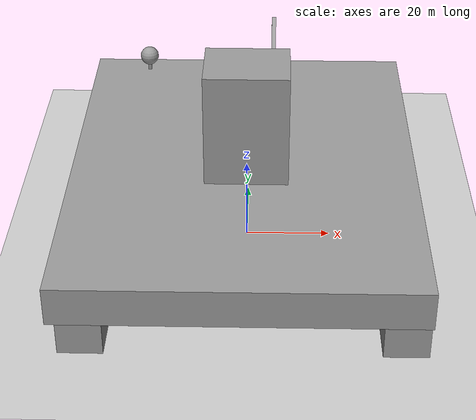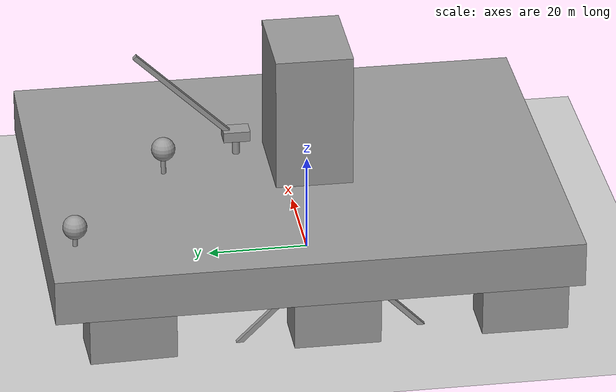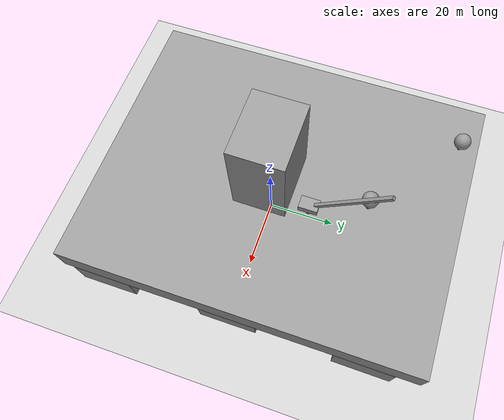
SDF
<sdf version="1.6">
 <world name="default">
  <light name="sun" type="directional">
   <pose>0 0 10 0 -0 0</pose>
   <diffuse>0.8 0.8 0.8 1</diffuse>
   <specular>0.2 0.2 0.2 1</specular>
   <attenuation>
    <range>1000</range>
    <constant>0.9</constant>
    <linear>0.01</linear>
    <quadratic>0.001</quadratic>
   </attenuation>
   <direction>-0.5 0.1 -0.9</direction>
  </light>
  <model name="ground_plane">
   <static>1</static>
   <link name="link">
    <collision name="collision">
     <geometry><plane><normal>0 0 1</normal><size>100 100</size></plane></geometry>
     <surface>
      <contact><collide_bitmask>65535</collide_bitmask></contact>
      <friction><ode><mu>100</mu><mu2>50</mu2></ode></friction>
     </surface>
    </collision>
    <visual name="visual">
     <cast_shadows>0</cast_shadows>
     <geometry><plane><normal>0 0 1</normal><size>100 100</size></plane></geometry>
     <material>
      <script><uri>file://media/materials/scripts/gazebo.material</uri><name>Gazebo/Grey</name></script>
     </material>
    </visual>
   </link>
  </model>
  <gravity>0 0 -9.8</gravity>
  <magnetic_field>6e-06 2.3e-05 -4.2e-05</magnetic_field>
  <atmosphere type="adiabatic"/>
  <physics name="default_physics" default="0" type="ode">
   <max_step_size>0.001</max_step_size>
   <real_time_factor>1</real_time_factor>
   <real_time_update_rate>1000</real_time_update_rate>
  </physics>
  <scene><ambient>0.4 0.4 0.4 1</ambient><background>0.7 0.7 0.7 1</background><shadows>1</shadows></scene>
  <spherical_coordinates>
   <surface_model>EARTH_WGS84</surface_model>
   <latitude_deg>0</latitude_deg>
   <longitude_deg>0</longitude_deg>
   <elevation>0</elevation>
   <heading_deg>0</heading_deg>
  </spherical_coordinates>
  <model name="unit_box">
   <static>1</static>
   <pose>-34.9898 -37 5 1e-06 -0 -0.006221</pose>
   <link name="link">
    <inertial>
     <mass>1</mass>
     <inertia>
      <ixx>0.166667</ixx>
      <ixy>0</ixy>
      <ixz>0</ixz>
      <iyy>0.166667</iyy>
      <iyz>0</iyz>
      <izz>0.166667</izz>
     </inertia>
    </inertial>
    <collision name="collision"><geometry><box><size>10 17 10</size></box></geometry></collision>
    <visual name="visual">
     <geometry><box><size>10 17 10</size></box></geometry>
     <material>
      <script><name>Gazebo/Grey</name><uri>file://media/materials/scripts/gazebo.material</uri></script>
     </material>
    </visual>
   </link>
  </model>
  <model name="unit_box_clone">
   <static>1</static>
   <pose>-35.0075 0.014639 5 0 0 -0.001893</pose>
   <link name="link">
    <inertial>
     <mass>1</mass>
     <inertia>
      <ixx>0.166667</ixx>
      <ixy>0</ixy>
      <ixz>0</ixz>
      <iyy>0.166667</iyy>
      <iyz>0</iyz>
      <izz>0.166667</izz>
     </inertia>
    </inertial>
    <collision name="collision"><geometry><box><size>10 17 10</size></box></geometry></collision>
    <visual name="visual">
     <geometry><box><size>10 17 10</size></box></geometry>
     <material>
      <script><name>Gazebo/Grey</name><uri>file://media/materials/scripts/gazebo.material</uri></script>
     </material>
    </visual>
   </link>
  </model>
  <model name="unit_box_clone_0">
   <static>1</static>
   <pose>-35.0085 40.0385 5 0 1e-06 0.030617</pose>
   <link name="unit_box_clone_0::unit_box_clone_0::link">
    <inertial>
     <mass>1</mass>
     <inertia>
      <ixx>0.166667</ixx>
      <ixy>0</ixy>
      <ixz>0</ixz>
      <iyy>0.166667</iyy>
      <iyz>0</iyz>
      <izz>0.166667</izz>
     </inertia>
    </inertial>
    <collision name="collision"><geometry><box><size>10 17 10</size></box></geometry></collision>
    <visual name="visual">
     <geometry><box><size>10 17 10</size></box></geometry>
     <material>
      <script><name>Gazebo/Grey</name><uri>file://media/materials/scripts/gazebo.material</uri></script>
     </material>
    </visual>
   </link>
  </model>
  <model name="unit_box_clone_1">
   <static>1</static>
   <pose>34.9964 -37 5 0 -0 0.002216</pose>
   <link name="link">
    <inertial>
     <mass>1</mass>
     <inertia>
      <ixx>0.166667</ixx>
      <ixy>0</ixy>
      <ixz>0</ixz>
      <iyy>0.166667</iyy>
      <iyz>0</iyz>
      <izz>0.166667</izz>
     </inertia>
    </inertial>
    <collision name="collision"><geometry><box><size>10 17 10</size></box></geometry></collision>
    <visual name="visual">
     <geometry><box><size>10 17 10</size></box></geometry>
     <material>
      <script><name>Gazebo/Grey</name><uri>file://media/materials/scripts/gazebo.material</uri></script>
     </material>
    </visual>
   </link>
  </model>
  <model name="unit_box_clone_2">
   <static>1</static>
   <pose>34.3874 0.16047 5 0 -0 0.000667</pose>
   <link name="link">
    <inertial>
     <mass>1</mass>
     <inertia>
      <ixx>0.166667</ixx>
      <ixy>0</ixy>
      <ixz>0</ixz>
      <iyy>0.166667</iyy>
      <iyz>0</iyz>
      <izz>0.166667</izz>
     </inertia>
    </inertial>
    <collision name="collision"><geometry><box><size>10 17 10</size></box></geometry></collision>
    <visual name="visual">
     <geometry><box><size>10 17 10</size></box></geometry>
     <material>
      <script><name>Gazebo/Grey</name><uri>file://media/materials/scripts/gazebo.material</uri></script>
     </material>
    </visual>
   </link>
  </model>
  <model name="unit_box_clone_3">
   <static>1</static>
   <pose>35.0005 40.0025 5 2e-06 -0 -0.008004</pose>
   <link name="link">
    <inertial>
     <mass>1</mass>
     <inertia>
      <ixx>0.166667</ixx>
      <ixy>0</ixy>
      <ixz>0</ixz>
      <iyy>0.166667</iyy>
      <iyz>0</iyz>
      <izz>0.166667</izz>
     </inertia>
    </inertial>
    <collision name="collision"><geometry><box><size>10 17 10</size></box></geometry></collision>
    <visual name="visual">
     <geometry><box><size>10 17 10</size></box></geometry>
     <material>
      <script><name>Gazebo/Grey</name><uri>file://media/materials/scripts/gazebo.material</uri></script>
     </material>
    </visual>
   </link>
  </model>
  <model name="unit_box_0">
   <static>1</static>
   <pose>-0.779903 3.34051 14.6451 0 -0 0</pose>
   <link name="unit_box_0::link">
    <gravity>0</gravity>
    <inertial>
     <mass>0.1</mass>
     <inertia>
      <ixx>0.166667</ixx>
      <ixy>0</ixy>
      <ixz>0</ixz>
      <iyy>0.166667</iyy>
      <iyz>0</iyz>
      <izz>0.166667</izz>
     </inertia>
    </inertial>
    <collision name="collision"><geometry><box><size>81.455 103.378 9.1204</size></box></geometry></collision>
    <visual name="visual">
     <geometry><box><size>81.455 103.378 9.1204</size></box></geometry>
     <material>
      <script><name>Gazebo/Grey</name><uri>file://media/materials/scripts/gazebo.material</uri></script>
     </material>
    </visual>
   </link>
  </model>
  <model name="unit_box_1">
   <static>1</static>
   <pose>-0.012495 -0.05623 32.9125 2e-06 -2e-05 -0.005014</pose>
   <link name="link">
    <inertial>
     <mass>1</mass>
     <inertia>
      <ixx>0.166667</ixx>
      <ixy>0</ixy>
      <ixz>0</ixz>
      <iyy>0.166667</iyy>
      <iyz>0</iyz>
      <izz>0.166667</izz>
     </inertia>
    </inertial>
    <collision name="collision"><geometry><box><size>19.5881 15.3994 27.4146</size></box></geometry></collision>
    <visual name="visual">
     <geometry><box><size>19.5881 15.3994 27.4146</size></box></geometry>
     <material>
      <script><name>Gazebo/Grey</name><uri>file://media/materials/scripts/gazebo.material</uri></script>
     </material>
    </visual>
   </link>
  </model>
  <model name="unit_box_2">
   <static>1</static>
   <pose>36.1187 -12.4088 5.05491 -0.780073 0 0</pose>
   <link name="link">
    <inertial>
     <mass>1</mass>
     <inertia>
      <ixx>0.166667</ixx>
      <ixy>0</ixy>
      <ixz>0</ixz>
      <iyy>0.166667</iyy>
      <iyz>0</iyz>
      <izz>0.166667</izz>
     </inertia>
    </inertial>
    <collision name="collision"><geometry><box><size>1 1 18.81</size></box></geometry></collision>
    <visual name="visual">
     <geometry><box><size>1 1 18.81</size></box></geometry>
     <material>
      <script><name>Gazebo/Grey</name><uri>file://media/materials/scripts/gazebo.material</uri></script>
     </material>
    </visual>
   </link>
  </model>
  <model name="unit_box_2_clone">
   <static>1</static>
   <pose>-33.8575 -11.5476 5.76183 -0.780073 0 0</pose>
   <link name="link">
    <inertial>
     <mass>1</mass>
     <inertia>
      <ixx>0.166667</ixx>
      <ixy>0</ixy>
      <ixz>0</ixz>
      <iyy>0.166667</iyy>
      <iyz>0</iyz>
      <izz>0.166667</izz>
     </inertia>
    </inertial>
    <collision name="collision"><geometry><box><size>1 1 18.81</size></box></geometry></collision>
    <visual name="visual">
     <geometry><box><size>1 1 18.81</size></box></geometry>
     <material>
      <script><name>Gazebo/Grey</name><uri>file://media/materials/scripts/gazebo.material</uri></script>
     </material>
    </visual>
   </link>
  </model>
  <model name="unit_box_2_clone_0">
   <static>1</static>
   <pose>34.2588 12.3532 5.16538 -2.35019 0 0</pose>
   <link name="link">
    <inertial>
     <mass>1</mass>
     <inertia>
      <ixx>0.166667</ixx>
      <ixy>0</ixy>
      <ixz>0</ixz>
      <iyy>0.166667</iyy>
      <iyz>0</iyz>
      <izz>0.166667</izz>
     </inertia>
    </inertial>
    <collision name="collision"><geometry><box><size>1 1 18.81</size></box></geometry></collision>
    <visual name="visual">
     <geometry><box><size>1 1 18.81</size></box></geometry>
     <material>
      <script><name>Gazebo/Grey</name><uri>file://media/materials/scripts/gazebo.material</uri></script>
     </material>
    </visual>
   </link>
  </model>
  <model name="unit_box_2_clone_0_clone">
   <static>1</static>
   <pose>-35.4323 13.3145 5.16538 -2.35019 0 0</pose>
   <link name="link">
    <inertial>
     <mass>1</mass>
     <inertia>
      <ixx>0.166667</ixx>
      <ixy>0</ixy>
      <ixz>0</ixz>
      <iyy>0.166667</iyy>
      <iyz>0</iyz>
      <izz>0.166667</izz>
     </inertia>
    </inertial>
    <collision name="collision"><geometry><box><size>1 1 18.81</size></box></geometry></collision>
    <visual name="visual">
     <geometry><box><size>1 1 18.81</size></box></geometry>
     <material>
      <script><name>Gazebo/Grey</name><uri>file://media/materials/scripts/gazebo.material</uri></script>
     </material>
    </visual>
   </link>
  </model>
  <model name="water_deposit">
   <static>1</static>
   <link name="link">
    <pose>2.7097 -0.021507 2.96873 0 -0 0</pose>
    <inertial>
     <mass>1</mass>
     <inertia><ixx>0.1</ixx><ixy>0</ixy><ixz>0</ixz><iyy>0.1</iyy><iyz>0</iyz><izz>0.1</izz></inertia>
    </inertial>
    <visual name="visual">
     <geometry><sphere><radius>2.38345</radius></sphere></geometry>
     <material>
      <script><name>Gazebo/Grey</name><uri>file://media/materials/scripts/gazebo.material</uri></script>
      <ambient>0.3 0.3 0.3 1</ambient>
      <diffuse>0.7 0.7 0.7 1</diffuse>
      <specular>0.01 0.01 0.01 1</specular>
      <emissive>0 0 0 1</emissive>
     </material>
    </visual>
    <collision name="collision">
     <geometry><sphere><radius>2.38345</radius></sphere></geometry>
     <surface>
      <friction>
       <ode><mu>1</mu><mu2>1</mu2><fdir1>0 0 0</fdir1><slip1>0</slip1><slip2>0</slip2></ode>
       <torsional>
        <coefficient>1</coefficient>
        <patch_radius>0</patch_radius>
        <surface_radius>0</surface_radius>
        <use_patch_radius>1</use_patch_radius>
        <ode><slip>0</slip></ode>
       </torsional>
      </friction>
      <bounce><restitution_coefficient>0</restitution_coefficient><threshold>1e+06</threshold></bounce>
      <contact>
       <collide_without_contact>0</collide_without_contact>
       <collide_without_contact_bitmask>1</collide_without_contact_bitmask>
       <collide_bitmask>1</collide_bitmask>
       <ode>
        <soft_cfm>0</soft_cfm>
        <soft_erp>0.2</soft_erp>
        <kp>1e+13</kp>
        <kd>1</kd>
        <max_vel>0.01</max_vel>
        <min_depth>0</min_depth>
       </ode>
       <bullet>
        <split_impulse>1</split_impulse>
        <split_impulse_penetration_threshold>-0.01</split_impulse_penetration_threshold>
        <soft_cfm>0</soft_cfm>
        <soft_erp>0.2</soft_erp>
        <kp>1e+13</kp>
        <kd>1</kd>
       </bullet>
      </contact>
     </surface>
    </collision>
   </link>
   <link name="support">
    <pose>2.71547 0 -0.777477 0 -0 0</pose>
    <inertial>
     <mass>3.53296</mass>
     <inertia><ixx>3.89564</ixx><ixy>0</ixy><ixz>0</ixz><iyy>3.89564</iyy><iyz>0</iyz><izz>0.44162</izz></inertia>
    </inertial>
    <visual name="visual">
     <geometry><cylinder><radius>0.5</radius><length>3.53297</length></cylinder></geometry>
     <material>
      <lighting>1</lighting>
      <script><uri>file://media/materials/scripts/gazebo.material</uri><name>Gazebo/Grey</name></script>
      <ambient>0.3 0.3 0.3 1</ambient>
      <diffuse>0.7 0.7 0.7 1</diffuse>
      <specular>0.01 0.01 0.01 1</specular>
      <emissive>0 0 0 1</emissive>
     </material>
    </visual>
    <collision name="collision">
     <geometry><cylinder><radius>0.5</radius><length>3.53297</length></cylinder></geometry>
     <surface>
      <friction>
       <ode><mu>1</mu><mu2>1</mu2><fdir1>0 0 0</fdir1><slip1>0</slip1><slip2>0</slip2></ode>
       <torsional>
        <coefficient>1</coefficient>
        <patch_radius>0</patch_radius>
        <surface_radius>0</surface_radius>
        <use_patch_radius>1</use_patch_radius>
        <ode><slip>0</slip></ode>
       </torsional>
      </friction>
      <bounce><restitution_coefficient>0</restitution_coefficient><threshold>1e+06</threshold></bounce>
      <contact>
       <collide_without_contact>0</collide_without_contact>
       <collide_without_contact_bitmask>1</collide_without_contact_bitmask>
       <collide_bitmask>1</collide_bitmask>
       <ode>
        <soft_cfm>0</soft_cfm>
        <soft_erp>0.2</soft_erp>
        <kp>1e+13</kp>
        <kd>1</kd>
        <max_vel>0.01</max_vel>
        <min_depth>0</min_depth>
       </ode>
       <bullet>
        <split_impulse>1</split_impulse>
        <split_impulse_penetration_threshold>-0.01</split_impulse_penetration_threshold>
        <soft_cfm>0</soft_cfm>
        <soft_erp>0.2</soft_erp>
        <kp>1e+13</kp>
        <kd>1</kd>
       </bullet>
      </contact>
     </surface>
    </collision>
   </link>
   <static>0</static>
   <pose>-29.894 49.524 20.2466 0 -0 0</pose>
  </model>
  <model name="water_deposit_clone">
   <static>1</static>
   <link name="link">
    <pose>2.7097 -0.021507 2.96873 0 -0 0</pose>
    <inertial>
     <mass>1</mass>
     <inertia><ixx>0.1</ixx><ixy>0</ixy><ixz>0</ixz><iyy>0.1</iyy><iyz>0</iyz><izz>0.1</izz></inertia>
    </inertial>
    <visual name="visual">
     <geometry><sphere><radius>2.38345</radius></sphere></geometry>
     <material>
      <script><name>Gazebo/Grey</name><uri>file://media/materials/scripts/gazebo.material</uri></script>
      <ambient>0.3 0.3 0.3 1</ambient>
      <diffuse>0.7 0.7 0.7 1</diffuse>
      <specular>0.01 0.01 0.01 1</specular>
      <emissive>0 0 0 1</emissive>
     </material>
    </visual>
    <collision name="collision">
     <geometry><sphere><radius>2.38345</radius></sphere></geometry>
     <surface>
      <friction>
       <ode><mu>1</mu><mu2>1</mu2><fdir1>0 0 0</fdir1><slip1>0</slip1><slip2>0</slip2></ode>
       <torsional>
        <coefficient>1</coefficient>
        <patch_radius>0</patch_radius>
        <surface_radius>0</surface_radius>
        <use_patch_radius>1</use_patch_radius>
        <ode><slip>0</slip></ode>
       </torsional>
      </friction>
      <bounce><restitution_coefficient>0</restitution_coefficient><threshold>1e+06</threshold></bounce>
      <contact>
       <collide_without_contact>0</collide_without_contact>
       <collide_without_contact_bitmask>1</collide_without_contact_bitmask>
       <collide_bitmask>1</collide_bitmask>
       <ode>
        <soft_cfm>0</soft_cfm>
        <soft_erp>0.2</soft_erp>
        <kp>1e+13</kp>
        <kd>1</kd>
        <max_vel>0.01</max_vel>
        <min_depth>0</min_depth>
       </ode>
       <bullet>
        <split_impulse>1</split_impulse>
        <split_impulse_penetration_threshold>-0.01</split_impulse_penetration_threshold>
        <soft_cfm>0</soft_cfm>
        <soft_erp>0.2</soft_erp>
        <kp>1e+13</kp>
        <kd>1</kd>
       </bullet>
      </contact>
     </surface>
    </collision>
   </link>
   <link name="support">
    <pose>2.71547 0 -0.777477 0 -0 0</pose>
    <inertial>
     <mass>3.53296</mass>
     <inertia><ixx>3.89564</ixx><ixy>0</ixy><ixz>0</ixz><iyy>3.89564</iyy><iyz>0</iyz><izz>0.44162</izz></inertia>
    </inertial>
    <visual name="visual">
     <geometry><cylinder><radius>0.5</radius><length>3.53297</length></cylinder></geometry>
     <material>
      <lighting>1</lighting>
      <script><uri>file://media/materials/scripts/gazebo.material</uri><name>Gazebo/Grey</name></script>
      <ambient>0.3 0.3 0.3 1</ambient>
      <diffuse>0.7 0.7 0.7 1</diffuse>
      <specular>0.01 0.01 0.01 1</specular>
      <emissive>0 0 0 1</emissive>
     </material>
    </visual>
    <collision name="collision">
     <geometry><cylinder><radius>0.5</radius><length>3.53297</length></cylinder></geometry>
     <surface>
      <friction>
       <ode><mu>1</mu><mu2>1</mu2><fdir1>0 0 0</fdir1><slip1>0</slip1><slip2>0</slip2></ode>
       <torsional>
        <coefficient>1</coefficient>
        <patch_radius>0</patch_radius>
        <surface_radius>0</surface_radius>
        <use_patch_radius>1</use_patch_radius>
        <ode><slip>0</slip></ode>
       </torsional>
      </friction>
      <bounce><restitution_coefficient>0</restitution_coefficient><threshold>1e+06</threshold></bounce>
      <contact>
       <collide_without_contact>0</collide_without_contact>
       <collide_without_contact_bitmask>1</collide_without_contact_bitmask>
       <collide_bitmask>1</collide_bitmask>
       <ode>
        <soft_cfm>0</soft_cfm>
        <soft_erp>0.2</soft_erp>
        <kp>1e+13</kp>
        <kd>1</kd>
        <max_vel>0.01</max_vel>
        <min_depth>0</min_depth>
       </ode>
       <bullet>
        <split_impulse>1</split_impulse>
        <split_impulse_penetration_threshold>-0.01</split_impulse_penetration_threshold>
        <soft_cfm>0</soft_cfm>
        <soft_erp>0.2</soft_erp>
        <kp>1e+13</kp>
        <kd>1</kd>
       </bullet>
      </contact>
     </surface>
    </collision>
   </link>
   <static>0</static>
   <pose>-2.94093 28.936 21.5817 0 -0 0</pose>
  </model>
  <model name="crane_5">
   <link name="link">
    <pose>0.774559 0.147623 0.548799 0 -0 0</pose>
    <inertial>
     <mass>1.48462</mass>
     <inertia><ixx>4.13495</ixx><ixy>0</ixy><ixz>0</ixz><iyy>2.19381</iyy><iyz>0</iyz><izz>5.22268</izz></inertia>
    </inertial>
    <visual name="visual">
     <geometry><box><size>3.64172 5.38071 2.11428</size></box></geometry>
     <material>
      <script><name>Gazebo/Grey</name><uri>file://media/materials/scripts/gazebo.material</uri></script>
      <ambient>0.3 0.3 0.3 1</ambient>
      <diffuse>0.7 0.7 0.7 1</diffuse>
      <specular>0.01 0.01 0.01 1</specular>
      <emissive>0 0 0 1</emissive>
      <shader type="vertex"><normal_map>__default__</normal_map></shader>
     </material>
    </visual>
    <collision name="collision">
     <geometry><box><size>3.64172 5.38071 2.11428</size></box></geometry>
     <surface>
      <friction>
       <ode><mu>1</mu><mu2>1</mu2><fdir1>0 0 0</fdir1><slip1>0</slip1><slip2>0</slip2></ode>
       <torsional>
        <coefficient>1</coefficient>
        <patch_radius>0</patch_radius>
        <surface_radius>0</surface_radius>
        <use_patch_radius>1</use_patch_radius>
        <ode><slip>0</slip></ode>
       </torsional>
      </friction>
      <bounce><restitution_coefficient>0</restitution_coefficient><threshold>1e+06</threshold></bounce>
      <contact>
       <collide_without_contact>0</collide_without_contact>
       <collide_without_contact_bitmask>1</collide_without_contact_bitmask>
       <collide_bitmask>1</collide_bitmask>
       <ode>
        <soft_cfm>0</soft_cfm>
        <soft_erp>0.2</soft_erp>
        <kp>1e+13</kp>
        <kd>1</kd>
        <max_vel>0.01</max_vel>
        <min_depth>0</min_depth>
       </ode>
       <bullet>
        <split_impulse>1</split_impulse>
        <split_impulse_penetration_threshold>-0.01</split_impulse_penetration_threshold>
        <soft_cfm>0</soft_cfm>
        <soft_erp>0.2</soft_erp>
        <kp>1e+13</kp>
        <kd>1</kd>
       </bullet>
      </contact>
     </surface>
    </collision>
   </link>
   <link name="link_0">
    <pose>0.763204 0.111335 -1.82829 0 -0.000149 0.000449</pose>
    <inertial>
     <mass>11.3104</mass>
     <inertia><ixx>23.7068</ixx><ixy>0</ixy><ixz>0</ixz><iyy>23.7068</iyy><iyz>0</iyz><izz>3.30577</izz></inertia>
    </inertial>
    <visual name="visual">
     <geometry><cylinder><radius>0.764561</radius><length>4.83721</length></cylinder></geometry>
     <material>
      <lighting>1</lighting>
      <script><uri>file://media/materials/scripts/gazebo.material</uri><name>Gazebo/Grey</name></script>
      <ambient>0.3 0.3 0.3 1</ambient>
      <diffuse>0.7 0.7 0.7 1</diffuse>
      <specular>0.01 0.01 0.01 1</specular>
      <emissive>0 0 0 1</emissive>
      <shader type="vertex"><normal_map>__default__</normal_map></shader>
     </material>
    </visual>
    <collision name="collision">
     <geometry><cylinder><radius>0.764561</radius><length>4.83721</length></cylinder></geometry>
     <surface>
      <friction>
       <ode><mu>1</mu><mu2>1</mu2><fdir1>0 0 0</fdir1><slip1>0</slip1><slip2>0</slip2></ode>
       <torsional>
        <coefficient>1</coefficient>
        <patch_radius>0</patch_radius>
        <surface_radius>0</surface_radius>
        <use_patch_radius>1</use_patch_radius>
        <ode><slip>0</slip></ode>
       </torsional>
      </friction>
      <bounce><restitution_coefficient>0</restitution_coefficient><threshold>1e+06</threshold></bounce>
      <contact>
       <collide_without_contact>0</collide_without_contact>
       <collide_without_contact_bitmask>1</collide_without_contact_bitmask>
       <collide_bitmask>1</collide_bitmask>
       <ode>
        <soft_cfm>0</soft_cfm>
        <soft_erp>0.2</soft_erp>
        <kp>1e+13</kp>
        <kd>1</kd>
        <max_vel>0.01</max_vel>
        <min_depth>0</min_depth>
       </ode>
       <bullet>
        <split_impulse>1</split_impulse>
        <split_impulse_penetration_threshold>-0.01</split_impulse_penetration_threshold>
        <soft_cfm>0</soft_cfm>
        <soft_erp>0.2</soft_erp>
        <kp>1e+13</kp>
        <kd>1</kd>
       </bullet>
      </contact>
     </surface>
    </collision>
   </link>
   <link name="link_3">
    <pose>0.652979 10.6805 9.87718 -0.803187 -0.000149 0.000449</pose>
    <inertial>
     <mass>26.724</mass>
     <inertia><ixx>1592.68</ixx><ixy>0</ixy><ixz>0</ixz><iyy>1592.68</iyy><iyz>0</iyz><izz>4.454</izz></inertia>
    </inertial>
    <visual name="visual">
     <geometry><box><size>1 1 26.7239</size></box></geometry>
     <material>
      <lighting>1</lighting>
      <script><uri>file://media/materials/scripts/gazebo.material</uri><name>Gazebo/Grey</name></script>
      <ambient>0.3 0.3 0.3 1</ambient>
      <diffuse>0.7 0.7 0.7 1</diffuse>
      <specular>0.01 0.01 0.01 1</specular>
      <emissive>0 0 0 1</emissive>
     </material>
    </visual>
    <collision name="collision">
     <geometry><box><size>1 1 26.7239</size></box></geometry>
     <surface>
      <friction>
       <ode><mu>1</mu><mu2>1</mu2><fdir1>0 0 0</fdir1><slip1>0</slip1><slip2>0</slip2></ode>
       <torsional>
        <coefficient>1</coefficient>
        <patch_radius>0</patch_radius>
        <surface_radius>0</surface_radius>
        <use_patch_radius>1</use_patch_radius>
        <ode><slip>0</slip></ode>
       </torsional>
      </friction>
      <bounce><restitution_coefficient>0</restitution_coefficient><threshold>1e+06</threshold></bounce>
      <contact>
       <collide_without_contact>0</collide_without_contact>
       <collide_without_contact_bitmask>1</collide_without_contact_bitmask>
       <collide_bitmask>1</collide_bitmask>
       <ode>
        <soft_cfm>0</soft_cfm>
        <soft_erp>0.2</soft_erp>
        <kp>1e+13</kp>
        <kd>1</kd>
        <max_vel>0.01</max_vel>
        <min_depth>0</min_depth>
       </ode>
       <bullet>
        <split_impulse>1</split_impulse>
        <split_impulse_penetration_threshold>-0.01</split_impulse_penetration_threshold>
        <soft_cfm>0</soft_cfm>
        <soft_erp>0.2</soft_erp>
        <kp>1e+13</kp>
        <kd>1</kd>
       </bullet>
      </contact>
     </surface>
    </collision>
   </link>
   <static>1</static>
   <pose>5.45546 13.3234 23.0244 0 0.000149 -0.000449</pose>
  </model>
 </world>
</sdf>
